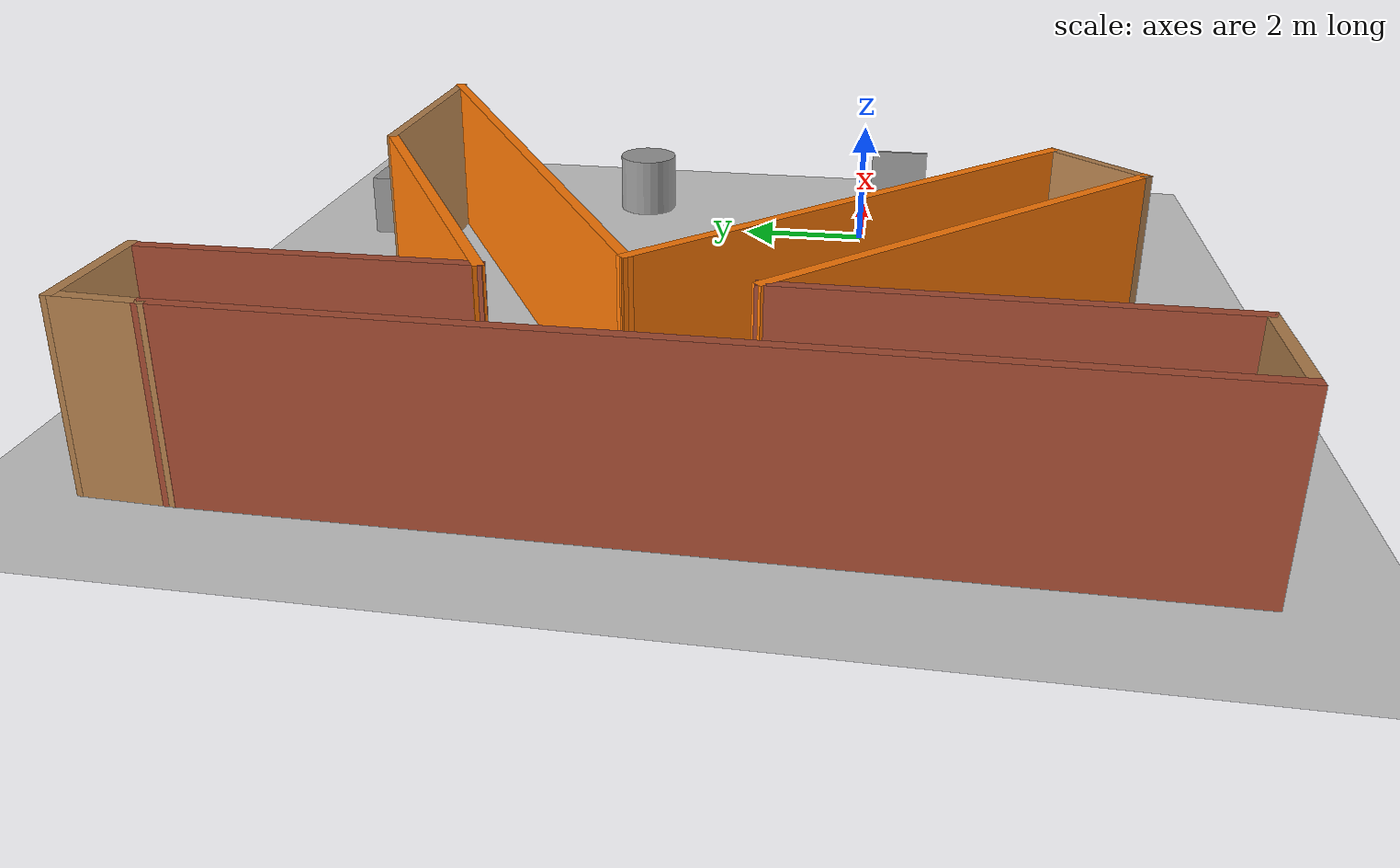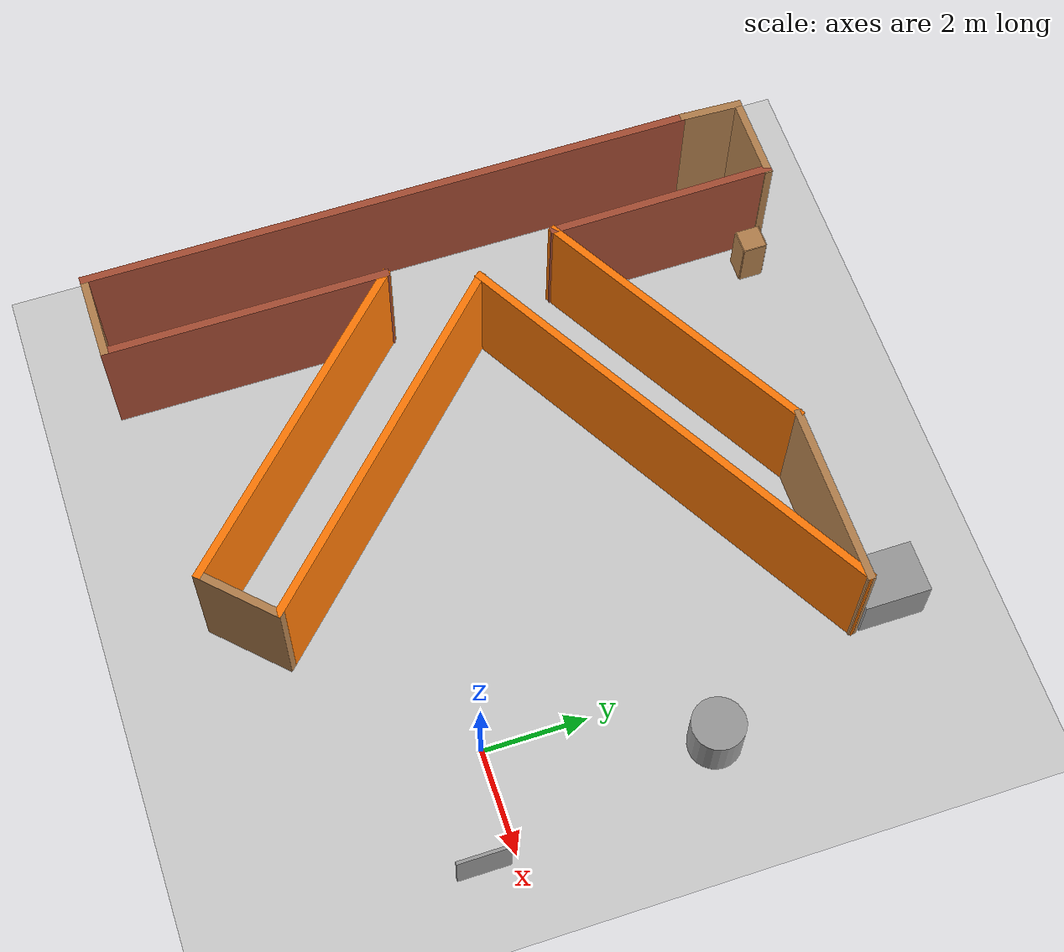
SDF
<sdf version="1.6">
 <world name="default">
  <model name="ground_plane">
   <static>1</static>
   <link name="link">
    <collision name="collision">
     <geometry><plane><normal>0 0 1</normal><size>100 100</size></plane></geometry>
     <surface>
      <contact><collide_bitmask>65535</collide_bitmask></contact>
      <friction><ode><mu>100</mu><mu2>50</mu2></ode></friction>
     </surface>
    </collision>
    <visual name="visual">
     <cast_shadows>0</cast_shadows>
     <geometry><plane><normal>0 0 1</normal><size>100 100</size></plane></geometry>
     <material>
      <script><uri>file://media/materials/scripts/gazebo.material</uri><name>Gazebo/Grey</name></script>
     </material>
    </visual>
   </link>
  </model>
  <model name="k_map">
   <pose>-5.13887 2.04621 0 0 -0 0</pose>
   <link name="Wall_0">
    <collision name="Wall_0_Collision">
     <geometry><box><size>12 0.15 2.5</size></box></geometry>
     <pose>0 0 1.25 0 -0 0</pose>
    </collision>
    <visual name="Wall_0_Visual">
     <pose>0 0 1.25 0 -0 0</pose>
     <geometry><box><size>12 0.15 2.5</size></box></geometry>
     <material>
      <script><uri>file://media/materials/scripts/gazebo.material</uri><name>Gazebo/Bricks</name></script>
      <ambient>1 1 1 1</ambient>
     </material>
     <meta><layer>0</layer></meta>
    </visual>
    <pose>-5.05323 -0.546651 0 0 0 -1.5708</pose>
   </link>
   <link name="Wall_1">
    <collision name="Wall_1_Collision">
     <geometry><box><size>1.75 0.15 2.5</size></box></geometry>
     <pose>0 0 1.25 0 -0 0</pose>
    </collision>
    <visual name="Wall_1_Visual">
     <pose>0 0 1.25 0 -0 0</pose>
     <geometry><box><size>1.75 0.15 2.5</size></box></geometry>
     <material>
      <script><uri>file://media/materials/scripts/gazebo.material</uri><name>Gazebo/Wood</name></script>
      <ambient>1 1 1 1</ambient>
     </material>
     <meta><layer>0</layer></meta>
    </visual>
    <pose>-4.25323 -6.47165 0 0 -0 0</pose>
   </link>
   <link name="Wall_10">
    <collision name="Wall_10_Collision">
     <geometry><box><size>1.75 0.15 2.5</size></box></geometry>
     <pose>0 0 1.25 0 -0 0</pose>
    </collision>
    <visual name="Wall_10_Visual">
     <pose>0 0 1.25 0 -0 0</pose>
     <geometry><box><size>1.75 0.15 2.5</size></box></geometry>
     <material>
      <script><uri>file://media/materials/scripts/gazebo.material</uri><name>Gazebo/Wood</name></script>
      <ambient>1 1 1 1</ambient>
     </material>
     <meta><layer>0</layer></meta>
    </visual>
    <pose>-4.21074 6.46879 0 0 -0 3.14159</pose>
   </link>
   <link name="Wall_14">
    <collision name="Wall_14_Collision">
     <geometry><box><size>1.24127 0.15 2.5</size></box></geometry>
     <pose>0 0 1.25 0 -0 0</pose>
    </collision>
    <visual name="Wall_14_Visual">
     <pose>0 0 1.25 0 -0 0</pose>
     <geometry><box><size>1.24127 0.15 2.5</size></box></geometry>
     <material>
      <script><uri>file://media/materials/scripts/gazebo.material</uri><name>Gazebo/Wood</name></script>
      <ambient>1 1 1 1</ambient>
     </material>
     <meta><layer>0</layer></meta>
    </visual>
    <pose>-5.03198 5.92357 0 0 -0 1.53185</pose>
   </link>
   <link name="Wall_2">
    <collision name="Wall_2_Collision">
     <geometry><box><size>5.5 0.15 2.5</size></box></geometry>
     <pose>0 0 1.25 0 -0 0</pose>
    </collision>
    <visual name="Wall_2_Visual">
     <pose>0 0 1.25 0 -0 0</pose>
     <geometry><box><size>5.5 0.15 2.5</size></box></geometry>
     <material>
      <script><uri>file://media/materials/scripts/gazebo.material</uri><name>Gazebo/Bricks</name></script>
      <ambient>1 1 1 1</ambient>
     </material>
     <meta><layer>0</layer></meta>
    </visual>
    <pose>-3.45323 -3.79665 0 0 -0 1.5708</pose>
   </link>
   <link name="Wall_3">
    <collision name="Wall_3_Collision">
     <geometry><box><size>7 0.15 2.5</size></box></geometry>
     <pose>0 0 1.25 0 -0 0</pose>
    </collision>
    <visual name="Wall_3_Visual">
     <pose>0 0 1.25 0 -0 0</pose>
     <geometry><box><size>7 0.15 2.5</size></box></geometry>
     <material>
      <script><uri>file://media/materials/scripts/gazebo.material</uri><name>Gazebo/Grey</name></script>
      <ambient>0.996078 0.47451 0.0196078 1</ambient>
     </material>
     <meta><layer>0</layer></meta>
    </visual>
    <pose>-1.03139 -3.54349 0 0 0 -0.785398</pose>
   </link>
   <link name="Wall_4">
    <collision name="Wall_4_Collision">
     <geometry><box><size>1.75 0.15 2.5</size></box></geometry>
     <pose>0 0 1.25 0 -0 0</pose>
    </collision>
    <visual name="Wall_4_Visual">
     <pose>0 0 1.25 0 -0 0</pose>
     <geometry><box><size>1.75 0.15 2.5</size></box></geometry>
     <material>
      <script><uri>file://media/materials/scripts/gazebo.material</uri><name>Gazebo/Wood</name></script>
      <ambient>1 1 1 1</ambient>
     </material>
     <meta><layer>0</layer></meta>
    </visual>
    <pose>1.95614 -5.39965 0 0 -0 0.785398</pose>
   </link>
   <link name="Wall_5">
    <collision name="Wall_5_Collision">
     <geometry><box><size>7.75 0.15 2.5</size></box></geometry>
     <pose>0 0 1.25 0 -0 0</pose>
    </collision>
    <visual name="Wall_5_Visual">
     <pose>0 0 1.25 0 -0 0</pose>
     <geometry><box><size>7.75 0.15 2.5</size></box></geometry>
     <material>
      <script><uri>file://media/materials/scripts/gazebo.material</uri><name>Gazebo/Grey</name></script>
      <ambient>0.996078 0.47451 0.0196078 1</ambient>
     </material>
     <meta><layer>0</layer></meta>
    </visual>
    <pose>-0.165184 -2.14696 0 0 -0 2.35619</pose>
   </link>
   <link name="Wall_6">
    <collision name="Wall_6_Collision">
     <geometry><box><size>9.25 0.15 2.5</size></box></geometry>
     <pose>0 0 1.25 0 -0 0</pose>
    </collision>
    <visual name="Wall_6_Visual">
     <pose>0 0 1.25 0 -0 0</pose>
     <geometry><box><size>9.25 0.15 2.5</size></box></geometry>
     <material>
      <script><uri>file://media/materials/scripts/gazebo.material</uri><name>Gazebo/Grey</name></script>
      <ambient>0.996078 0.47451 0.0196078 1</ambient>
     </material>
     <meta><layer>0</layer></meta>
    </visual>
    <pose>1.08823 2.81505 0 0 -0 0.523599</pose>
   </link>
   <link name="Wall_7">
    <collision name="Wall_7_Collision">
     <geometry><box><size>3.5 0.15 2.5</size></box></geometry>
     <pose>0 0 1.25 0 -0 0</pose>
    </collision>
    <visual name="Wall_7_Visual">
     <pose>0 0 1.25 0 -0 0</pose>
     <geometry><box><size>3.5 0.15 2.5</size></box></geometry>
     <material>
      <script><uri>file://media/materials/scripts/gazebo.material</uri><name>Gazebo/Wood</name></script>
      <ambient>1 1 1 1</ambient>
     </material>
     <meta><layer>0</layer></meta>
    </visual>
    <pose>3.35364 5.09005 0 0 -0 3.14159</pose>
   </link>
   <link name="Wall_8">
    <collision name="Wall_8_Collision">
     <geometry><box><size>6 0.15 2.5</size></box></geometry>
     <pose>0 0 1.25 0 -0 0</pose>
    </collision>
    <visual name="Wall_8_Visual">
     <pose>0 0 1.25 0 -0 0</pose>
     <geometry><box><size>6 0.15 2.5</size></box></geometry>
     <material>
      <script><uri>file://media/materials/scripts/gazebo.material</uri><name>Gazebo/Grey</name></script>
      <ambient>0.996078 0.47451 0.0196078 1</ambient>
     </material>
     <meta><layer>0</layer></meta>
    </visual>
    <pose>-0.854482 3.62755 0 0 0 -2.61799</pose>
   </link>
   <link name="Wall_9">
    <collision name="Wall_9_Collision">
     <geometry><box><size>4.45399 0.15 2.5</size></box></geometry>
     <pose>0 0 1.25 0 -0 0</pose>
    </collision>
    <visual name="Wall_9_Visual">
     <pose>0 0 1.25 0 -0 0</pose>
     <geometry><box><size>4.45399 0.15 2.5</size></box></geometry>
     <material>
      <script><uri>file://media/materials/scripts/gazebo.material</uri><name>Gazebo/Bricks</name></script>
      <ambient>1 1 1 1</ambient>
     </material>
     <meta><layer>0</layer></meta>
    </visual>
    <pose>-3.41074 4.31692 0 0 -0 1.58154</pose>
   </link>
   <static>1</static>
  </model>
  <model name="unit_box">
   <pose>2.10203 -0.625044 0.5 0 4e-06 6e-06</pose>
   <link name="link">
    <inertial>
     <mass>1</mass>
     <inertia>
      <ixx>0.166667</ixx>
      <ixy>0</ixy>
      <ixz>0</ixz>
      <iyy>0.166667</iyy>
      <iyz>0</iyz>
      <izz>0.166667</izz>
     </inertia>
    </inertial>
    <collision name="collision"><geometry><box><size>0.0612562 1 1</size></box></geometry></collision>
    <visual name="visual">
     <geometry><box><size>0.0612562 1 1</size></box></geometry>
     <material>
      <script><name>Gazebo/Grey</name><uri>file://media/materials/scripts/gazebo.material</uri></script>
     </material>
    </visual>
   </link>
  </model>
  <model name="unit_cylinder">
   <pose>1.13703 4.00384 0.499994 -3e-06 0 0</pose>
   <link name="link">
    <inertial>
     <mass>1</mass>
     <inertia><ixx>0.145833</ixx><ixy>0</ixy><ixz>0</ixz><iyy>0.145833</iyy><iyz>0</iyz><izz>0.125</izz></inertia>
    </inertial>
    <collision name="collision">
     <geometry><cylinder><radius>0.5</radius><length>1</length></cylinder></geometry>
    </collision>
    <visual name="visual">
     <geometry><cylinder><radius>0.5</radius><length>1</length></cylinder></geometry>
     <material>
      <script><name>Gazebo/Grey</name><uri>file://media/materials/scripts/gazebo.material</uri></script>
     </material>
    </visual>
   </link>
  </model>
  <model name="cabinet">
   <static>1</static>
   <link name="cabinet_bottom_plate">
    <inertial>
     <pose>0 0 -1 0 -0 0</pose>
     <inertia><ixx>2.05</ixx><ixy>0</ixy><ixz>0</ixz><iyy>2.05</iyy><iyz>0</iyz><izz>2.05</izz></inertia>
     <mass>25</mass>
    </inertial>
    <collision name="cabinet_bottom_plate_geom">
     <pose>0 0 0.01 0 -0 0</pose>
     <geometry><box><size>0.45 0.45 0.02</size></box></geometry>
    </collision>
    <visual name="cabinet_bottom_plate_geom_visual">
     <pose>0 0 0.01 0 -0 0</pose>
     <geometry><box><size>0.45 0.45 0.02</size></box></geometry>
     <material>
      <script><uri>file://media/materials/scripts/gazebo.material</uri><name>Gazebo/Wood</name></script>
     </material>
    </visual>
    <collision name="cabinet_bottom_plate_geom_cabinet_back_plate">
     <pose>0.235 0 0.51 0 -0 0</pose>
     <geometry><box><size>0.02 0.45 1.02</size></box></geometry>
    </collision>
    <visual name="cabinet_bottom_plate_geom_cabinet_back_plate_visual">
     <pose>0.235 0 0.51 0 -0 0</pose>
     <geometry><box><size>0.02 0.45 1.02</size></box></geometry>
     <material>
      <script><uri>file://media/materials/scripts/gazebo.material</uri><name>Gazebo/Wood</name></script>
     </material>
    </visual>
    <collision name="cabinet_bottom_plate_geom_cabinet_left_plate">
     <pose>0 0.235 0.51 0 -0 0</pose>
     <geometry><box><size>0.45 0.02 1.02</size></box></geometry>
    </collision>
    <visual name="cabinet_bottom_plate_geom_cabinet_left_plate_visual">
     <pose>0 0.235 0.51 0 -0 0</pose>
     <geometry><box><size>0.45 0.02 1.02</size></box></geometry>
     <material>
      <script><uri>file://media/materials/scripts/gazebo.material</uri><name>Gazebo/Wood</name></script>
     </material>
    </visual>
    <collision name="cabinet_bottom_plate_geom_cabinet_middle_plate">
     <pose>0 0 0.51 0 -0 0</pose>
     <geometry><box><size>0.45 0.45 0.02</size></box></geometry>
    </collision>
    <visual name="cabinet_bottom_plate_geom_cabinet_middle_plate_visual">
     <pose>0 0 0.51 0 -0 0</pose>
     <geometry><box><size>0.45 0.45 0.02</size></box></geometry>
     <material>
      <script><uri>file://media/materials/scripts/gazebo.material</uri><name>Gazebo/Wood</name></script>
     </material>
    </visual>
    <collision name="cabinet_bottom_plate_geom_cabinet_right_plate">
     <pose>0 -0.235 0.51 0 -0 0</pose>
     <geometry><box><size>0.45 0.02 1.02</size></box></geometry>
    </collision>
    <visual name="cabinet_bottom_plate_geom_cabinet_right_plate_visual">
     <pose>0 -0.235 0.51 0 -0 0</pose>
     <geometry><box><size>0.45 0.02 1.02</size></box></geometry>
     <material>
      <script><uri>file://media/materials/scripts/gazebo.material</uri><name>Gazebo/Wood</name></script>
     </material>
    </visual>
    <collision name="cabinet_bottom_plate_geom_cabinet_top_plate">
     <pose>0 0 1.01 0 -0 0</pose>
     <geometry><box><size>0.45 0.45 0.02</size></box></geometry>
    </collision>
    <visual name="cabinet_bottom_plate_geom_cabinet_top_plate_visual">
     <pose>0 0 1.01 0 -0 0</pose>
     <geometry><box><size>0.45 0.45 0.02</size></box></geometry>
     <material>
      <script><uri>file://media/materials/scripts/gazebo.material</uri><name>Gazebo/Wood</name></script>
     </material>
    </visual>
   </link>
   <pose>-8.03108 8.13729 0 0 -0 0</pose>
  </model>
  <model name="unit_box_0">
   <pose>-0.559501 7.91208 0.499995 0 -1e-05 0.000904</pose>
   <link name="link">
    <inertial>
     <mass>1</mass>
     <inertia>
      <ixx>0.166667</ixx>
      <ixy>0</ixy>
      <ixz>0</ixz>
      <iyy>0.166667</iyy>
      <iyz>0</iyz>
      <izz>0.166667</izz>
     </inertia>
    </inertial>
    <collision name="collision"><geometry><box><size>1 1.26601 1</size></box></geometry></collision>
    <visual name="visual">
     <geometry><box><size>1 1.26601 1</size></box></geometry>
     <material>
      <script><name>Gazebo/Grey</name><uri>file://media/materials/scripts/gazebo.material</uri></script>
     </material>
    </visual>
   </link>
  </model>
 </world>
</sdf>
